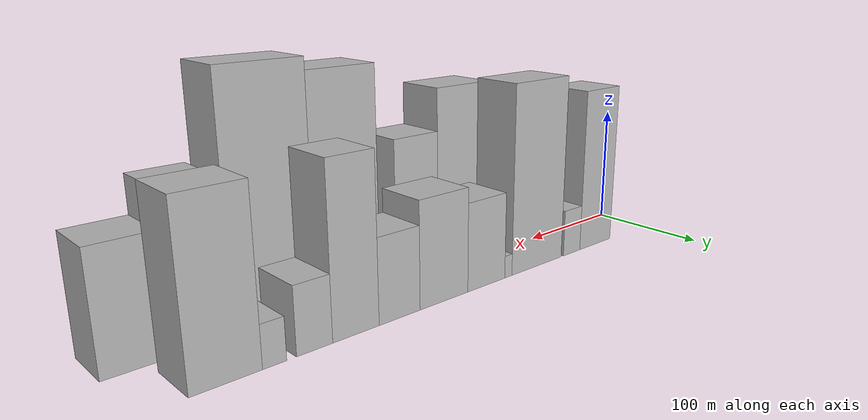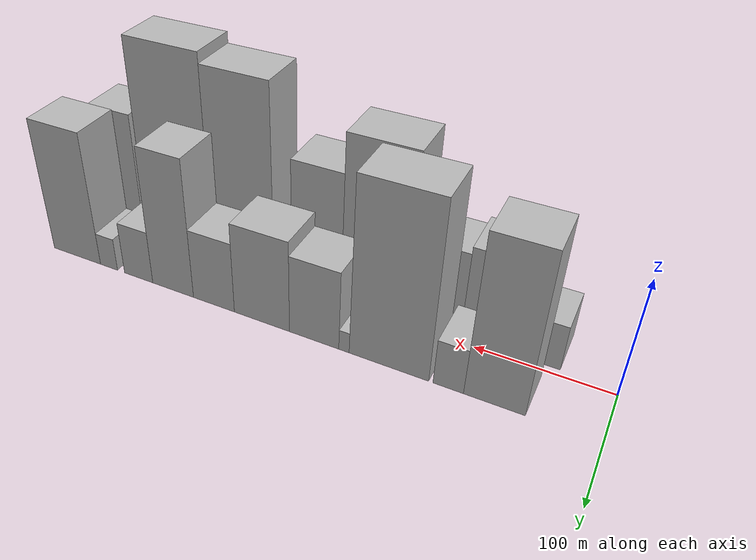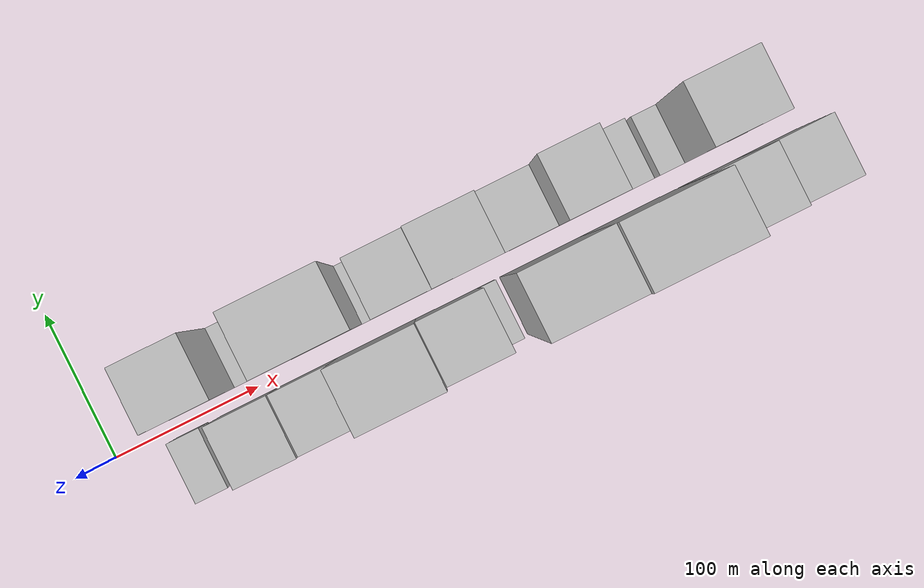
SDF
<sdf version="1.6">
 <world name="default">
  <scene>
   <sky><clouds><speed>12</speed></clouds></sky>
   <ambient>0.4 0.4 0.4 1</ambient>
   <background>0.7 0.7 0.7 1</background>
   <shadows>1</shadows>
  </scene>
  <gravity>0 0 -9.8066</gravity>
  <magnetic_field>6e-06 2.3e-05 -4.2e-05</magnetic_field>
  <physics default="0" name="default_physics" type="ode">
   <ode>
    <solver>
     <type>quick</type>
     <iters>10</iters>
     <sor>1.0</sor>
     <use_dynamic_moi_rescaling>0</use_dynamic_moi_rescaling>
    </solver>
    <constraints>
     <cfm>0</cfm>
     <erp>0.2</erp>
     <contact_max_correcting_vel>100</contact_max_correcting_vel>
     <contact_surface_layer>0.001</contact_surface_layer>
    </constraints>
   </ode>
   <max_step_size>0.004</max_step_size>
   <real_time_factor>1</real_time_factor>
   <real_time_update_rate>250</real_time_update_rate>
  </physics>
  <light name="sun" type="directional">
   <pose>0 0 10 0 0 0</pose>
   <diffuse>0.8 0.8 0.8 1</diffuse>
   <specular>0.2 0.2 0.2 1</specular>
   <attenuation>
    <range>1000</range>
    <constant>0.9</constant>
    <linear>0.01</linear>
    <quadratic>0.001</quadratic>
   </attenuation>
   <direction>-0.5 0.1 -0.9</direction>
  </light>
  <model name="building_1">
   <static>1</static>
   <pose>71.1089 26.0000 0 0.000000 0.000000 1.570796</pose>
   <link name="link">
    <pose>0 0 67.50 0 0 0</pose>
    <collision name="collision"><geometry><box><size>40.0000 42.2177 135.0000</size></box></geometry></collision>
    <visual name="visual">
     <cast_shadows>0</cast_shadows>
     <geometry><box><size>40.0000 42.2177 135.0000</size></box></geometry>
     <material>
      <script>
       <uri>model://HANNAS_wall/materials/scripts</uri>
       <uri>model://HANNAS_wall/materials/textures</uri>
       <name>vrc/HANNAS_wall</name>
      </script>
     </material>
    </visual>
   </link>
  </model>
  <model name="building_2">
   <static>1</static>
   <pose>103.0684 26.0000 0 0.000000 0.000000 1.570796</pose>
   <link name="link">
    <pose>0 0 19.50 0 0 0</pose>
    <collision name="collision"><geometry><box><size>40.0000 21.7014 39.0000</size></box></geometry></collision>
    <visual name="visual">
     <cast_shadows>0</cast_shadows>
     <geometry><box><size>40.0000 21.7014 39.0000</size></box></geometry>
     <material>
      <script>
       <uri>model://HANNAS_wall/materials/scripts</uri>
       <uri>model://HANNAS_wall/materials/textures</uri>
       <name>vrc/HANNAS_wall</name>
      </script>
     </material>
    </visual>
   </link>
  </model>
  <model name="building_3">
   <static>1</static>
   <pose>146.8186 26.0000 0 0.000000 0.000000 1.570796</pose>
   <link name="link">
    <pose>0 0 75.00 0 0 0</pose>
    <collision name="collision"><geometry><box><size>40.0000 59.7990 150.0000</size></box></geometry></collision>
    <visual name="visual">
     <cast_shadows>0</cast_shadows>
     <geometry><box><size>40.0000 59.7990 150.0000</size></box></geometry>
     <material>
      <script>
       <uri>model://HANNAS_wall/materials/scripts</uri>
       <uri>model://HANNAS_wall/materials/textures</uri>
       <name>vrc/HANNAS_wall</name>
      </script>
     </material>
    </visual>
   </link>
  </model>
  <model name="building_4">
   <static>1</static>
   <pose>180.7630 26.0000 0 0.000000 0.000000 1.570796</pose>
   <link name="link">
    <pose>0 0 9.00 0 0 0</pose>
    <collision name="collision"><geometry><box><size>40.0000 8.0899 18.0000</size></box></geometry></collision>
    <visual name="visual">
     <cast_shadows>0</cast_shadows>
     <geometry><box><size>40.0000 8.0899 18.0000</size></box></geometry>
     <material>
      <script>
       <uri>model://HANNAS_wall/materials/scripts</uri>
       <uri>model://HANNAS_wall/materials/textures</uri>
       <name>vrc/HANNAS_wall</name>
      </script>
     </material>
    </visual>
   </link>
  </model>
  <model name="building_5">
   <static>1</static>
   <pose>204.6827 26.0000 0 0.000000 0.000000 1.570796</pose>
   <link name="link">
    <pose>0 0 34.50 0 0 0</pose>
    <collision name="collision"><geometry><box><size>40.0000 39.7496 69.0000</size></box></geometry></collision>
    <visual name="visual">
     <cast_shadows>0</cast_shadows>
     <geometry><box><size>40.0000 39.7496 69.0000</size></box></geometry>
     <material>
      <script>
       <uri>model://HANNAS_wall/materials/scripts</uri>
       <uri>model://HANNAS_wall/materials/textures</uri>
       <name>vrc/HANNAS_wall</name>
      </script>
     </material>
    </visual>
   </link>
  </model>
  <model name="building_6">
   <static>1</static>
   <pose>247.9446 26.0000 0 0.000000 0.000000 1.570796</pose>
   <link name="link">
    <pose>0 0 40.50 0 0 0</pose>
    <collision name="collision"><geometry><box><size>40.0000 46.7743 81.0000</size></box></geometry></collision>
    <visual name="visual">
     <cast_shadows>0</cast_shadows>
     <geometry><box><size>40.0000 46.7743 81.0000</size></box></geometry>
     <material>
      <script>
       <uri>model://HANNAS_wall/materials/scripts</uri>
       <uri>model://HANNAS_wall/materials/textures</uri>
       <name>vrc/HANNAS_wall</name>
      </script>
     </material>
    </visual>
   </link>
  </model>
  <model name="building_7">
   <static>1</static>
   <pose>289.5795 26.0000 0 0.000000 0.000000 1.570796</pose>
   <link name="link">
    <pose>0 0 31.50 0 0 0</pose>
    <collision name="collision"><geometry><box><size>40.0000 36.4954 63.0000</size></box></geometry></collision>
    <visual name="visual">
     <cast_shadows>0</cast_shadows>
     <geometry><box><size>40.0000 36.4954 63.0000</size></box></geometry>
     <material>
      <script>
       <uri>model://HANNAS_wall/materials/scripts</uri>
       <uri>model://HANNAS_wall/materials/textures</uri>
       <name>vrc/HANNAS_wall</name>
      </script>
     </material>
    </visual>
   </link>
  </model>
  <model name="building_8">
   <static>1</static>
   <pose>326.7707 26.0000 0 0.000000 0.000000 1.570796</pose>
   <link name="link">
    <pose>0 0 61.50 0 0 0</pose>
    <collision name="collision"><geometry><box><size>40.0000 37.8872 123.0000</size></box></geometry></collision>
    <visual name="visual">
     <cast_shadows>0</cast_shadows>
     <geometry><box><size>40.0000 37.8872 123.0000</size></box></geometry>
     <material>
      <script>
       <uri>model://HANNAS_wall/materials/scripts</uri>
       <uri>model://HANNAS_wall/materials/textures</uri>
       <name>vrc/HANNAS_wall</name>
      </script>
     </material>
    </visual>
   </link>
  </model>
  <model name="building_9">
   <static>1</static>
   <pose>359.3199 26.0000 0 0.000000 0.000000 1.570796</pose>
   <link name="link">
    <pose>0 0 24.00 0 0 0</pose>
    <collision name="collision"><geometry><box><size>40.0000 27.2112 48.0000</size></box></geometry></collision>
    <visual name="visual">
     <cast_shadows>0</cast_shadows>
     <geometry><box><size>40.0000 27.2112 48.0000</size></box></geometry>
     <material>
      <script>
       <uri>model://HANNAS_wall/materials/scripts</uri>
       <uri>model://HANNAS_wall/materials/textures</uri>
       <name>vrc/HANNAS_wall</name>
      </script>
     </material>
    </visual>
   </link>
  </model>
  <model name="building_10">
   <static>1</static>
   <pose>388.3742 26.0000 0 0.000000 0.000000 1.570796</pose>
   <link name="link">
    <pose>0 0 15.00 0 0 0</pose>
    <collision name="collision"><geometry><box><size>40.0000 16.8974 30.0000</size></box></geometry></collision>
    <visual name="visual">
     <cast_shadows>0</cast_shadows>
     <geometry><box><size>40.0000 16.8974 30.0000</size></box></geometry>
     <material>
      <script>
       <uri>model://HANNAS_wall/materials/scripts</uri>
       <uri>model://HANNAS_wall/materials/textures</uri>
       <name>vrc/HANNAS_wall</name>
      </script>
     </material>
    </visual>
   </link>
  </model>
  <model name="building_11">
   <static>1</static>
   <pose>420.5760 26.0000 0 0.000000 0.000000 1.570796</pose>
   <link name="link">
    <pose>0 0 60.00 0 0 0</pose>
    <collision name="collision"><geometry><box><size>40.0000 47.5062 120.0000</size></box></geometry></collision>
    <visual name="visual">
     <cast_shadows>0</cast_shadows>
     <geometry><box><size>40.0000 47.5062 120.0000</size></box></geometry>
     <material>
      <script>
       <uri>model://HANNAS_wall/materials/scripts</uri>
       <uri>model://HANNAS_wall/materials/textures</uri>
       <name>vrc/HANNAS_wall</name>
      </script>
     </material>
    </visual>
   </link>
  </model>
  <model name="building_12">
   <static>1</static>
   <pose>50.9238 -26.0000 0 0.000000 0.000000 1.570796</pose>
   <link name="link">
    <pose>0 0 19.50 0 0 0</pose>
    <collision name="collision"><geometry><box><size>40.0000 21.8476 39.0000</size></box></geometry></collision>
    <visual name="visual">
     <cast_shadows>0</cast_shadows>
     <geometry><box><size>40.0000 21.8476 39.0000</size></box></geometry>
     <material>
      <script>
       <uri>model://HANNAS_wall/materials/scripts</uri>
       <uri>model://HANNAS_wall/materials/textures</uri>
       <name>vrc/HANNAS_wall</name>
      </script>
     </material>
    </visual>
   </link>
  </model>
  <model name="building_13">
   <static>1</static>
   <pose>92.1425 -26.0000 0 0.000000 0.000000 1.570796</pose>
   <link name="link">
    <pose>0 0 40.50 0 0 0</pose>
    <collision name="collision"><geometry><box><size>40.0000 40.5897 81.0000</size></box></geometry></collision>
    <visual name="visual">
     <cast_shadows>0</cast_shadows>
     <geometry><box><size>40.0000 40.5897 81.0000</size></box></geometry>
     <material>
      <script>
       <uri>model://HANNAS_wall/materials/scripts</uri>
       <uri>model://HANNAS_wall/materials/textures</uri>
       <name>vrc/HANNAS_wall</name>
      </script>
     </material>
    </visual>
   </link>
  </model>
  <model name="building_14">
   <static>1</static>
   <pose>132.7283 -26.0000 0 0.000000 0.000000 1.570796</pose>
   <link name="link">
    <pose>0 0 37.50 0 0 0</pose>
    <collision name="collision"><geometry><box><size>40.0000 40.5821 75.0000</size></box></geometry></collision>
    <visual name="visual">
     <cast_shadows>0</cast_shadows>
     <geometry><box><size>40.0000 40.5821 75.0000</size></box></geometry>
     <material>
      <script>
       <uri>model://HANNAS_wall/materials/scripts</uri>
       <uri>model://HANNAS_wall/materials/textures</uri>
       <name>vrc/HANNAS_wall</name>
      </script>
     </material>
    </visual>
   </link>
  </model>
  <model name="building_15">
   <static>1</static>
   <pose>180.3991 -26.0000 0 0.000000 0.000000 1.570796</pose>
   <link name="link">
    <pose>0 0 72.00 0 0 0</pose>
    <collision name="collision"><geometry><box><size>40.0000 54.7595 144.0000</size></box></geometry></collision>
    <visual name="visual">
     <cast_shadows>0</cast_shadows>
     <geometry><box><size>40.0000 54.7595 144.0000</size></box></geometry>
     <material>
      <script>
       <uri>model://HANNAS_wall/materials/scripts</uri>
       <uri>model://HANNAS_wall/materials/textures</uri>
       <name>vrc/HANNAS_wall</name>
      </script>
     </material>
    </visual>
   </link>
  </model>
  <model name="building_16">
   <static>1</static>
   <pose>229.0700 -26.0000 0 0.000000 0.000000 1.570796</pose>
   <link name="link">
    <pose>0 0 55.50 0 0 0</pose>
    <collision name="collision"><geometry><box><size>40.0000 42.5824 111.0000</size></box></geometry></collision>
    <visual name="visual">
     <cast_shadows>0</cast_shadows>
     <geometry><box><size>40.0000 42.5824 111.0000</size></box></geometry>
     <material>
      <script>
       <uri>model://HANNAS_wall/materials/scripts</uri>
       <uri>model://HANNAS_wall/materials/textures</uri>
       <name>vrc/HANNAS_wall</name>
      </script>
     </material>
    </visual>
   </link>
  </model>
  <model name="building_17">
   <static>1</static>
   <pose>256.3229 -26.0000 0 0.000000 0.000000 1.570796</pose>
   <link name="link">
    <pose>0 0 13.50 0 0 0</pose>
    <collision name="collision"><geometry><box><size>40.0000 11.9233 27.0000</size></box></geometry></collision>
    <visual name="visual">
     <cast_shadows>0</cast_shadows>
     <geometry><box><size>40.0000 11.9233 27.0000</size></box></geometry>
     <material>
      <script>
       <uri>model://HANNAS_wall/materials/scripts</uri>
       <uri>model://HANNAS_wall/materials/textures</uri>
       <name>vrc/HANNAS_wall</name>
      </script>
     </material>
    </visual>
   </link>
  </model>
  <model name="building_18">
   <static>1</static>
   <pose>294.6858 -26.0000 0 0.000000 0.000000 1.570796</pose>
   <link name="link">
    <pose>0 0 84.00 0 0 0</pose>
    <collision name="collision"><geometry><box><size>40.0000 56.8026 168.0000</size></box></geometry></collision>
    <visual name="visual">
     <cast_shadows>0</cast_shadows>
     <geometry><box><size>40.0000 56.8026 168.0000</size></box></geometry>
     <material>
      <script>
       <uri>model://HANNAS_wall/materials/scripts</uri>
       <uri>model://HANNAS_wall/materials/textures</uri>
       <name>vrc/HANNAS_wall</name>
      </script>
     </material>
    </visual>
   </link>
  </model>
  <model name="building_19">
   <static>1</static>
   <pose>355.4953 -26.0000 0 0.000000 0.000000 1.570796</pose>
   <link name="link">
    <pose>0 0 88.50 0 0 0</pose>
    <collision name="collision"><geometry><box><size>40.0000 64.8163 177.0000</size></box></geometry></collision>
    <visual name="visual">
     <cast_shadows>0</cast_shadows>
     <geometry><box><size>40.0000 64.8163 177.0000</size></box></geometry>
     <material>
      <script>
       <uri>model://HANNAS_wall/materials/scripts</uri>
       <uri>model://HANNAS_wall/materials/textures</uri>
       <name>vrc/HANNAS_wall</name>
      </script>
     </material>
    </visual>
   </link>
  </model>
  <model name="building_20">
   <static>1</static>
   <pose>411.7514 -26.0000 0 0.000000 0.000000 1.570796</pose>
   <link name="link">
    <pose>0 0 55.50 0 0 0</pose>
    <collision name="collision"><geometry><box><size>40.0000 39.6959 111.0000</size></box></geometry></collision>
    <visual name="visual">
     <cast_shadows>0</cast_shadows>
     <geometry><box><size>40.0000 39.6959 111.0000</size></box></geometry>
     <material>
      <script>
       <uri>model://HANNAS_wall/materials/scripts</uri>
       <uri>model://HANNAS_wall/materials/textures</uri>
       <name>vrc/HANNAS_wall</name>
      </script>
     </material>
    </visual>
   </link>
  </model>
  <model name="building_21">
   <static>1</static>
   <pose>453.1682 -26.0000 0 0.000000 0.000000 1.570796</pose>
   <link name="link">
    <pose>0 0 42.00 0 0 0</pose>
    <collision name="collision"><geometry><box><size>40.0000 43.1375 84.0000</size></box></geometry></collision>
    <visual name="visual">
     <cast_shadows>0</cast_shadows>
     <geometry><box><size>40.0000 43.1375 84.0000</size></box></geometry>
     <material>
      <script>
       <uri>model://HANNAS_wall/materials/scripts</uri>
       <uri>model://HANNAS_wall/materials/textures</uri>
       <name>vrc/HANNAS_wall</name>
      </script>
     </material>
    </visual>
   </link>
  </model>
 </world>
</sdf>
